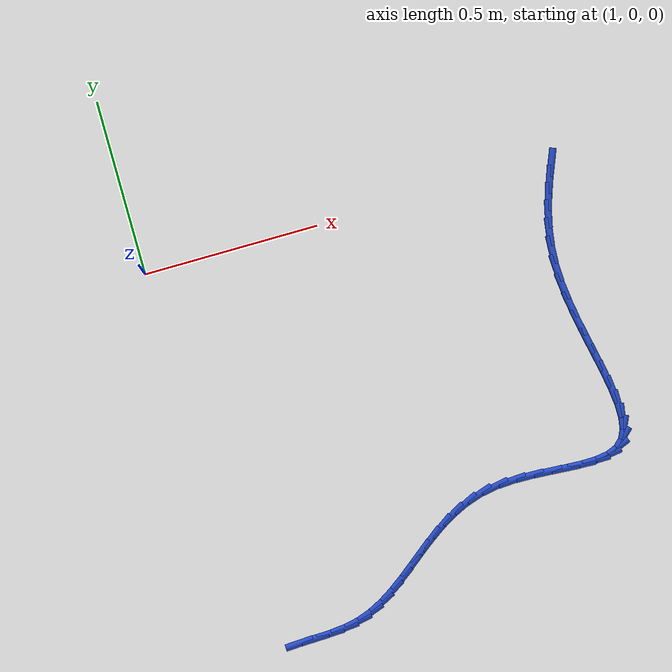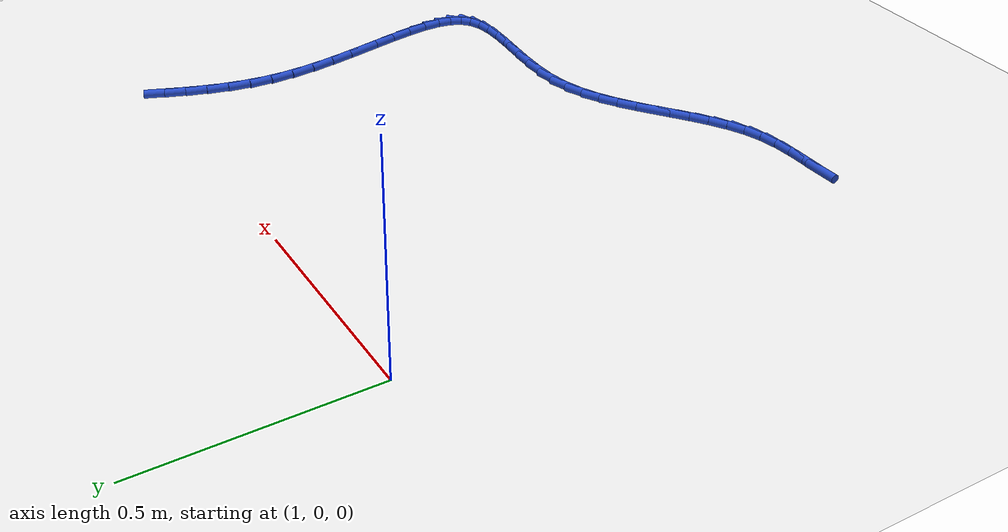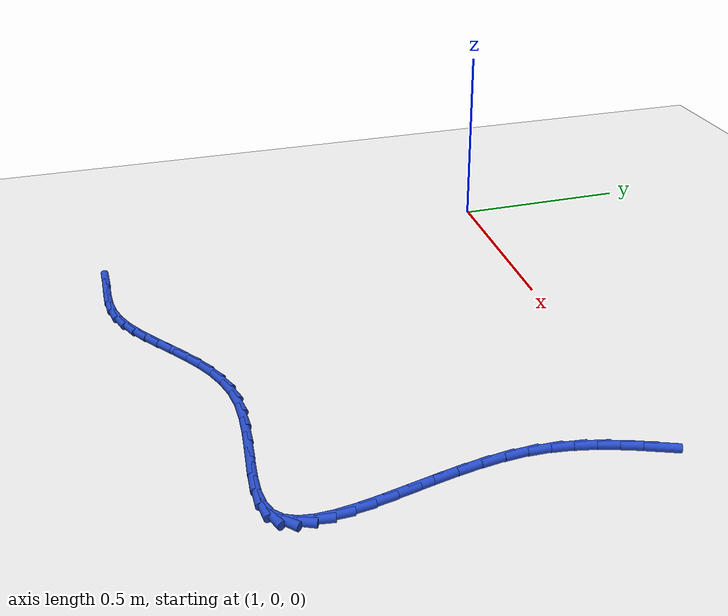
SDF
<sdf version="1.6">
 <world name="default">
  <model name="ground_plane">
   <static>1</static>
   <link name="link">
    <collision name="collision">
     <geometry><plane><normal>0 0 1</normal><size>100 100</size></plane></geometry>
     <surface><friction><ode><mu>100</mu><mu2>50</mu2></ode></friction></surface>
    </collision>
    <visual name="visual">
     <cast_shadows>0</cast_shadows>
     <geometry><plane><normal>0 0 1</normal><size>100 100</size></plane></geometry>
     <material>
      <script><uri>file://media/materials/scripts/gazebo.material</uri><name>Gazebo/WhiteGlow</name></script>
     </material>
    </visual>
   </link>
  </model>
  <model name="line">
   <link name="link_86">
    <pose>2.177255699273004 -0.006993438009629024 0.01 0 1.57 1.1896698371130612</pose>
    <collision name="collision">
     <geometry><cylinder><radius>0.01</radius><length>0.08</length></cylinder></geometry>
    </collision>
    <visual name="visual">
     <material>
      <script><name>Gazebo/Blue</name><uri>file://media/materials/scripts/gazebo.material</uri></script>
     </material>
     <geometry><cylinder><radius>0.01</radius><length>0.08</length></cylinder></geometry>
    </visual>
   </link>
   <link name="link_87">
    <pose>2.159505403087377 -0.05128949991978565 0.01 0 1.57 1.229627357101661</pose>
    <collision name="collision">
     <geometry><cylinder><radius>0.01</radius><length>0.08</length></cylinder></geometry>
    </collision>
    <visual name="visual">
     <material>
      <script><name>Gazebo/Blue</name><uri>file://media/materials/scripts/gazebo.material</uri></script>
     </material>
     <geometry><cylinder><radius>0.01</radius><length>0.08</length></cylinder></geometry>
    </visual>
   </link>
   <link name="link_88">
    <pose>2.14330336016243 -0.09692228769078555 0.01 0 1.57 1.2846472449235053</pose>
    <collision name="collision">
     <geometry><cylinder><radius>0.01</radius><length>0.08</length></cylinder></geometry>
    </collision>
    <visual name="visual">
     <material>
      <script><name>Gazebo/Blue</name><uri>file://media/materials/scripts/gazebo.material</uri></script>
     </material>
     <geometry><cylinder><radius>0.01</radius><length>0.08</length></cylinder></geometry>
    </visual>
   </link>
   <link name="link_89">
    <pose>2.12944291892643 -0.14403079563880128 0.01 0 1.57 1.3541210839164068</pose>
    <collision name="collision">
     <geometry><cylinder><radius>0.01</radius><length>0.08</length></cylinder></geometry>
    </collision>
    <visual name="visual">
     <material>
      <script><name>Gazebo/Blue</name><uri>file://media/materials/scripts/gazebo.material</uri></script>
     </material>
     <geometry><cylinder><radius>0.01</radius><length>0.08</length></cylinder></geometry>
    </visual>
   </link>
   <link name="link_90">
    <pose>2.118717427807643 -0.19275401808000273 0.01 0 1.57 1.4369421312807218</pose>
    <collision name="collision">
     <geometry><cylinder><radius>0.01</radius><length>0.08</length></cylinder></geometry>
    </collision>
    <visual name="visual">
     <material>
      <script><name>Gazebo/Blue</name><uri>file://media/materials/scripts/gazebo.material</uri></script>
     </material>
     <geometry><cylinder><radius>0.01</radius><length>0.08</length></cylinder></geometry>
    </visual>
   </link>
   <link name="link_91">
    <pose>2.1119202352343347 -0.24323094933056238 0.01 0 1.57 1.5310354904520878</pose>
    <collision name="collision">
     <geometry><cylinder><radius>0.01</radius><length>0.08</length></cylinder></geometry>
    </collision>
    <visual name="visual">
     <material>
      <script><name>Gazebo/Blue</name><uri>file://media/materials/scripts/gazebo.material</uri></script>
     </material>
     <geometry><cylinder><radius>0.01</radius><length>0.08</length></cylinder></geometry>
    </visual>
   </link>
   <link name="link_92">
    <pose>2.1098370262084782 -0.2955968274959277 0.01 0 1.57 -1.5199575618394092</pose>
    <collision name="collision">
     <geometry><cylinder><radius>0.01</radius><length>0.08</length></cylinder></geometry>
    </collision>
    <visual name="visual">
     <material>
      <script><name>Gazebo/Blue</name><uri>file://media/materials/scripts/gazebo.material</uri></script>
     </material>
     <geometry><cylinder><radius>0.01</radius><length>0.08</length></cylinder></geometry>
    </visual>
   </link>
   <link name="link_93">
    <pose>2.112587935727015 -0.3496606728815114 0.01 0 1.57 -1.4525477509720999</pose>
    <collision name="collision">
     <geometry><cylinder><radius>0.01</radius><length>0.08</length></cylinder></geometry>
    </collision>
    <visual name="visual">
     <material>
      <script><name>Gazebo/Blue</name><uri>file://media/materials/scripts/gazebo.material</uri></script>
     </material>
     <geometry><cylinder><radius>0.01</radius><length>0.08</length></cylinder></geometry>
    </visual>
   </link>
   <link name="link_94">
    <pose>2.1191216955887504 -0.40465734521672103 0.01 0 1.57 -1.406319991510955</pose>
    <collision name="collision">
     <geometry><cylinder><radius>0.01</radius><length>0.08</length></cylinder></geometry>
    </collision>
    <visual name="visual">
     <material>
      <script><name>Gazebo/Blue</name><uri>file://media/materials/scripts/gazebo.material</uri></script>
     </material>
     <geometry><cylinder><radius>0.01</radius><length>0.08</length></cylinder></geometry>
    </visual>
   </link>
   <link name="link_95">
    <pose>2.1282679521995416 -0.4597633348002493 0.01 0 1.57 -1.3785318906190478</pose>
    <collision name="collision">
     <geometry><cylinder><radius>0.01</radius><length>0.08</length></cylinder></geometry>
    </collision>
    <visual name="visual">
     <material>
      <script><name>Gazebo/Blue</name><uri>file://media/materials/scripts/gazebo.material</uri></script>
     </material>
     <geometry><cylinder><radius>0.01</radius><length>0.08</length></cylinder></geometry>
    </visual>
   </link>
   <link name="link_96">
    <pose>2.138856351965247 -0.5141551319307919 0.01 0 1.57 -1.368142035341729</pose>
    <collision name="collision">
     <geometry><cylinder><radius>0.01</radius><length>0.08</length></cylinder></geometry>
    </collision>
    <visual name="visual">
     <material>
      <script><name>Gazebo/Blue</name><uri>file://media/materials/scripts/gazebo.material</uri></script>
     </material>
     <geometry><cylinder><radius>0.01</radius><length>0.08</length></cylinder></geometry>
    </visual>
   </link>
   <link name="link_97">
    <pose>2.149716541291723 -0.5670092269070436 0.01 0 1.57 -1.376010092981086</pose>
    <collision name="collision">
     <geometry><cylinder><radius>0.01</radius><length>0.08</length></cylinder></geometry>
    </collision>
    <visual name="visual">
     <material>
      <script><name>Gazebo/Blue</name><uri>file://media/materials/scripts/gazebo.material</uri></script>
     </material>
     <geometry><cylinder><radius>0.01</radius><length>0.08</length></cylinder></geometry>
    </visual>
   </link>
   <link name="link_98">
    <pose>2.1596781665848286 -0.6175021100276991 0.01 0 1.57 -1.4054828308673648</pose>
    <collision name="collision">
     <geometry><cylinder><radius>0.01</radius><length>0.08</length></cylinder></geometry>
    </collision>
    <visual name="visual">
     <material>
      <script><name>Gazebo/Blue</name><uri>file://media/materials/scripts/gazebo.material</uri></script>
     </material>
     <geometry><cylinder><radius>0.01</radius><length>0.08</length></cylinder></geometry>
    </visual>
   </link>
   <link name="link_99">
    <pose>2.167570874250421 -0.6648102715914543 0.01 0 1.57 -1.4637373966760399</pose>
    <collision name="collision">
     <geometry><cylinder><radius>0.01</radius><length>0.08</length></cylinder></geometry>
    </collision>
    <visual name="visual">
     <material>
      <script><name>Gazebo/Blue</name><uri>file://media/materials/scripts/gazebo.material</uri></script>
     </material>
     <geometry><cylinder><radius>0.01</radius><length>0.08</length></cylinder></geometry>
    </visual>
   </link>
   <link name="link_100">
    <pose>2.1722243106943564 -0.7081102018970018 0.01 0 1.57 -1.5644584053149218</pose>
    <collision name="collision">
     <geometry><cylinder><radius>0.01</radius><length>0.08</length></cylinder></geometry>
    </collision>
    <visual name="visual">
     <material>
      <script><name>Gazebo/Blue</name><uri>file://media/materials/scripts/gazebo.material</uri></script>
     </material>
     <geometry><cylinder><radius>0.01</radius><length>0.08</length></cylinder></geometry>
    </visual>
   </link>
   <link name="link_101">
    <pose>2.1724681223224938 -0.7465783912430373 0.01 0 1.57 1.4095837501225976</pose>
    <collision name="collision">
     <geometry><cylinder><radius>0.01</radius><length>0.08</length></cylinder></geometry>
    </collision>
    <visual name="visual">
     <material>
      <script><name>Gazebo/Blue</name><uri>file://media/materials/scripts/gazebo.material</uri></script>
     </material>
     <geometry><cylinder><radius>0.01</radius><length>0.08</length></cylinder></geometry>
    </visual>
   </link>
   <link name="link_102">
    <pose>2.16713195554069 -0.7793913299282555 0.01 0 1.57 1.140511140463801</pose>
    <collision name="collision">
     <geometry><cylinder><radius>0.01</radius><length>0.08</length></cylinder></geometry>
    </collision>
    <visual name="visual">
     <material>
      <script><name>Gazebo/Blue</name><uri>file://media/materials/scripts/gazebo.material</uri></script>
     </material>
     <geometry><cylinder><radius>0.01</radius><length>0.08</length></cylinder></geometry>
    </visual>
   </link>
   <link name="link_103">
    <pose>2.155045456754803 -0.8057255082513518 0.01 0 1.57 0.7604365113381947</pose>
    <collision name="collision">
     <geometry><cylinder><radius>0.01</radius><length>0.08</length></cylinder></geometry>
    </collision>
    <visual name="visual">
     <material>
      <script><name>Gazebo/Blue</name><uri>file://media/materials/scripts/gazebo.material</uri></script>
     </material>
     <geometry><cylinder><radius>0.01</radius><length>0.08</length></cylinder></geometry>
    </visual>
   </link>
   <link name="link_104">
    <pose>2.1350385750012166 -0.8247577076009571 0.01 0 1.57 0.38139939520773675</pose>
    <collision name="collision">
     <geometry><cylinder><radius>0.01</radius><length>0.08</length></cylinder></geometry>
    </collision>
    <visual name="visual">
     <material>
      <script><name>Gazebo/Blue</name><uri>file://media/materials/scripts/gazebo.material</uri></script>
     </material>
     <geometry><cylinder><radius>0.01</radius><length>0.08</length></cylinder></geometry>
    </visual>
   </link>
   <link name="link_105">
    <pose>2.106500417068548 -0.836202544051748 0.01 0 1.57 0.1442600645002017</pose>
    <collision name="collision">
     <geometry><cylinder><radius>0.01</radius><length>0.08</length></cylinder></geometry>
    </collision>
    <visual name="visual">
     <material>
      <script><name>Gazebo/Blue</name><uri>file://media/materials/scripts/gazebo.material</uri></script>
     </material>
     <geometry><cylinder><radius>0.01</radius><length>0.08</length></cylinder></geometry>
    </visual>
   </link>
   <link name="link_106">
    <pose>2.0705377676637395 -0.8414268092232201 0.01 0 1.57 0.01636711367577029</pose>
    <collision name="collision">
     <geometry><cylinder><radius>0.01</radius><length>0.08</length></cylinder></geometry>
    </collision>
    <visual name="visual">
     <material>
      <script><name>Gazebo/Blue</name><uri>file://media/materials/scripts/gazebo.material</uri></script>
     </material>
     <geometry><cylinder><radius>0.01</radius><length>0.08</length></cylinder></geometry>
    </visual>
   </link>
   <link name="link_107">
    <pose>2.0285861504035076 -0.8421134974301264 0.01 0 1.57 -0.04658258866878437</pose>
    <collision name="collision">
     <geometry><cylinder><radius>0.01</radius><length>0.08</length></cylinder></geometry>
    </collision>
    <visual name="visual">
     <material>
      <script><name>Gazebo/Blue</name><uri>file://media/materials/scripts/gazebo.material</uri></script>
     </material>
     <geometry><cylinder><radius>0.01</radius><length>0.08</length></cylinder></geometry>
    </visual>
   </link>
   <link name="link_108">
    <pose>1.982081088904571 -0.8399456029872201 0.01 0 1.57 -0.06719578099414475</pose>
    <collision name="collision">
     <geometry><cylinder><radius>0.01</radius><length>0.08</length></cylinder></geometry>
    </collision>
    <visual name="visual">
     <material>
      <script><name>Gazebo/Blue</name><uri>file://media/materials/scripts/gazebo.material</uri></script>
     </material>
     <geometry><cylinder><radius>0.01</radius><length>0.08</length></cylinder></geometry>
    </visual>
   </link>
   <link name="link_109">
    <pose>1.9324581067836462 -0.8366061202092545 0.01 0 1.57 -0.05506669483883373</pose>
    <collision name="collision">
     <geometry><cylinder><radius>0.01</radius><length>0.08</length></cylinder></geometry>
    </collision>
    <visual name="visual">
     <material>
      <script><name>Gazebo/Blue</name><uri>file://media/materials/scripts/gazebo.material</uri></script>
     </material>
     <geometry><cylinder><radius>0.01</radius><length>0.08</length></cylinder></geometry>
    </visual>
   </link>
   <link name="link_110">
    <pose>1.8811527276574498 -0.8337780434109824 0.01 0 1.57 -0.012291307584814287</pose>
    <collision name="collision">
     <geometry><cylinder><radius>0.01</radius><length>0.08</length></cylinder></geometry>
    </collision>
    <visual name="visual">
     <material>
      <script><name>Gazebo/Blue</name><uri>file://media/materials/scripts/gazebo.material</uri></script>
     </material>
     <geometry><cylinder><radius>0.01</radius><length>0.08</length></cylinder></geometry>
    </visual>
   </link>
   <link name="link_111">
    <pose>1.829600475142701 -0.8331443669071572 0.01 0 1.57 0.06431716485560637</pose>
    <collision name="collision">
     <geometry><cylinder><radius>0.01</radius><length>0.08</length></cylinder></geometry>
    </collision>
    <visual name="visual">
     <material>
      <script><name>Gazebo/Blue</name><uri>file://media/materials/scripts/gazebo.material</uri></script>
     </material>
     <geometry><cylinder><radius>0.01</radius><length>0.08</length></cylinder></geometry>
    </visual>
   </link>
   <link name="link_112">
    <pose>1.7792368728561174 -0.8363880850125323 0.01 0 1.57 0.18150799313766408</pose>
    <collision name="collision">
     <geometry><cylinder><radius>0.01</radius><length>0.08</length></cylinder></geometry>
    </collision>
    <visual name="visual">
     <material>
      <script><name>Gazebo/Blue</name><uri>file://media/materials/scripts/gazebo.material</uri></script>
     </material>
     <geometry><cylinder><radius>0.01</radius><length>0.08</length></cylinder></geometry>
    </visual>
   </link>
   <link name="link_113">
    <pose>1.7314713971604854 -0.8451543817442129 0.01 0 1.57 0.318667825328856</pose>
    <collision name="collision">
     <geometry><cylinder><radius>0.01</radius><length>0.08</length></cylinder></geometry>
    </collision>
    <visual name="visual">
     <material>
      <script><name>Gazebo/Blue</name><uri>file://media/materials/scripts/gazebo.material</uri></script>
     </material>
     <geometry><cylinder><radius>0.01</radius><length>0.08</length></cylinder></geometry>
    </visual>
   </link>
   <link name="link_114">
    <pose>1.6868727626047375 -0.8598679879184375 0.01 0 1.57 0.43847027813561845</pose>
    <collision name="collision">
     <geometry><cylinder><radius>0.01</radius><length>0.08</length></cylinder></geometry>
    </collision>
    <visual name="visual">
     <material>
      <script><name>Gazebo/Blue</name><uri>file://media/materials/scripts/gazebo.material</uri></script>
     </material>
     <geometry><cylinder><radius>0.01</radius><length>0.08</length></cylinder></geometry>
    </visual>
   </link>
   <link name="link_115">
    <pose>1.6450076551475292 -0.8794990856550038 0.01 0 1.57 0.5340784759412673</pose>
    <collision name="collision">
     <geometry><cylinder><radius>0.01</radius><length>0.08</length></cylinder></geometry>
    </collision>
    <visual name="visual">
     <material>
      <script><name>Gazebo/Blue</name><uri>file://media/materials/scripts/gazebo.material</uri></script>
     </material>
     <geometry><cylinder><radius>0.01</radius><length>0.08</length></cylinder></geometry>
    </visual>
   </link>
   <link name="link_116">
    <pose>1.605384148501011 -0.9029327753030071 0.01 0 1.57 0.6037761310966265</pose>
    <collision name="collision">
     <geometry><cylinder><radius>0.01</radius><length>0.08</length></cylinder></geometry>
    </collision>
    <visual name="visual">
     <material>
      <script><name>Gazebo/Blue</name><uri>file://media/materials/scripts/gazebo.material</uri></script>
     </material>
     <geometry><cylinder><radius>0.01</radius><length>0.08</length></cylinder></geometry>
    </visual>
   </link>
   <link name="link_117">
    <pose>1.567510316377331 -0.9290541572115436 0.01 0 1.57 0.6475457790068265</pose>
    <collision name="collision">
     <geometry><cylinder><radius>0.01</radius><length>0.08</length></cylinder></geometry>
    </collision>
    <visual name="visual">
     <material>
      <script><name>Gazebo/Blue</name><uri>file://media/materials/scripts/gazebo.material</uri></script>
     </material>
     <geometry><cylinder><radius>0.01</radius><length>0.08</length></cylinder></geometry>
    </visual>
   </link>
   <link name="link_118">
    <pose>1.5308942324886379 -0.9567483317297099 0.01 0 1.57 0.6656933093551318</pose>
    <collision name="collision">
     <geometry><cylinder><radius>0.01</radius><length>0.08</length></cylinder></geometry>
    </collision>
    <visual name="visual">
     <material>
      <script><name>Gazebo/Blue</name><uri>file://media/materials/scripts/gazebo.material</uri></script>
     </material>
     <geometry><cylinder><radius>0.01</radius><length>0.08</length></cylinder></geometry>
    </visual>
   </link>
   <link name="link_119">
    <pose>1.4950439705470808 -0.9849003992066016 0.01 0 1.57 0.6579630878283794</pose>
    <collision name="collision">
     <geometry><cylinder><radius>0.01</radius><length>0.08</length></cylinder></geometry>
    </collision>
    <visual name="visual">
     <material>
      <script><name>Gazebo/Blue</name><uri>file://media/materials/scripts/gazebo.material</uri></script>
     </material>
     <geometry><cylinder><radius>0.01</radius><length>0.08</length></cylinder></geometry>
    </visual>
   </link>
   <link name="link_120">
    <pose>1.4594676042648074 -1.0123954599913145 0.01 0 1.57 0.623124382999279</pose>
    <collision name="collision">
     <geometry><cylinder><radius>0.01</radius><length>0.08</length></cylinder></geometry>
    </collision>
    <visual name="visual">
     <material>
      <script><name>Gazebo/Blue</name><uri>file://media/materials/scripts/gazebo.material</uri></script>
     </material>
     <geometry><cylinder><radius>0.01</radius><length>0.08</length></cylinder></geometry>
    </visual>
   </link>
   <link name="link_121">
    <pose>1.4236732073539669 -1.0381186144329455 0.01 0 1.57 0.5590153949582519</pose>
    <collision name="collision">
     <geometry><cylinder><radius>0.01</radius><length>0.08</length></cylinder></geometry>
    </collision>
    <visual name="visual">
     <material>
      <script><name>Gazebo/Blue</name><uri>file://media/materials/scripts/gazebo.material</uri></script>
     </material>
     <geometry><cylinder><radius>0.01</radius><length>0.08</length></cylinder></geometry>
    </visual>
   </link>
   <link name="link_122">
    <pose>1.3871688535267095 -1.0609549628805899 0.01 0 1.57 0.4632555394568808</pose>
    <collision name="collision">
     <geometry><cylinder><radius>0.01</radius><length>0.08</length></cylinder></geometry>
    </collision>
    <visual name="visual">
     <material>
      <script><name>Gazebo/Blue</name><uri>file://media/materials/scripts/gazebo.material</uri></script>
     </material>
     <geometry><cylinder><radius>0.01</radius><length>0.08</length></cylinder></geometry>
    </visual>
   </link>
   <link name="link_123">
    <pose>1.3494626164951824 -1.0797896056833438 0.01 0 1.57 0.33508517815772854</pose>
    <collision name="collision">
     <geometry><cylinder><radius>0.01</radius><length>0.08</length></cylinder></geometry>
    </collision>
    <visual name="visual">
     <material>
      <script><name>Gazebo/Blue</name><uri>file://media/materials/scripts/gazebo.material</uri></script>
     </material>
     <geometry><cylinder><radius>0.01</radius><length>0.08</length></cylinder></geometry>
    </visual>
   </link>
   <link name="link_124">
    <pose>1.3100630032463734 -1.093509205776931 0.01 0 1.57 0.19588714632864623</pose>
    <collision name="collision">
     <geometry><cylinder><radius>0.01</radius><length>0.08</length></cylinder></geometry>
    </collision>
    <visual name="visual">
     <material>
      <script><name>Gazebo/Blue</name><uri>file://media/materials/scripts/gazebo.material</uri></script>
     </material>
     <geometry><cylinder><radius>0.01</radius><length>0.08</length></cylinder></geometry>
    </visual>
   </link>
   <link name="link_125">
    <pose>1.2686783847850203 -1.1017212268771859 0.01 0 1.57 0.09645906238416073</pose>
    <collision name="collision">
     <geometry><cylinder><radius>0.01</radius><length>0.08</length></cylinder></geometry>
    </collision>
    <visual name="visual">
     <material>
      <script><name>Gazebo/Blue</name><uri>file://media/materials/scripts/gazebo.material</uri></script>
     </material>
     <geometry><cylinder><radius>0.01</radius><length>0.08</length></cylinder></geometry>
    </visual>
   </link>
   <link name="link_126">
    <pose>1.2255336368657515 -1.1058958843389848 0.01 0 1.57 0.042675885724167695</pose>
    <collision name="collision">
     <geometry><cylinder><radius>0.01</radius><length>0.08</length></cylinder></geometry>
    </collision>
    <visual name="visual">
     <material>
      <script><name>Gazebo/Blue</name><uri>file://media/materials/scripts/gazebo.material</uri></script>
     </material>
     <geometry><cylinder><radius>0.01</radius><length>0.08</length></cylinder></geometry>
    </visual>
   </link>
   <link name="link_127">
    <pose>1.1809359577615475 -1.1078002860550156 0.01 0 1.57 0.030623334534513953</pose>
    <collision name="collision">
     <geometry><cylinder><radius>0.01</radius><length>0.08</length></cylinder></geometry>
    </collision>
    <visual name="visual">
     <material>
      <script><name>Gazebo/Blue</name><uri>file://media/materials/scripts/gazebo.material</uri></script>
     </material>
     <geometry><cylinder><radius>0.01</radius><length>0.08</length></cylinder></geometry>
    </visual>
   </link>
   <link name="link_128">
    <pose>1.1351925457453862 -1.1092015399179653 0.01 0 1.57 0.0571532855445544</pose>
    <collision name="collision">
     <geometry><cylinder><radius>0.01</radius><length>0.08</length></cylinder></geometry>
    </collision>
    <visual name="visual">
     <material>
      <script><name>Gazebo/Blue</name><uri>file://media/materials/scripts/gazebo.material</uri></script>
     </material>
     <geometry><cylinder><radius>0.01</radius><length>0.08</length></cylinder></geometry>
    </visual>
   </link>
  </model>
 </world>
</sdf>
